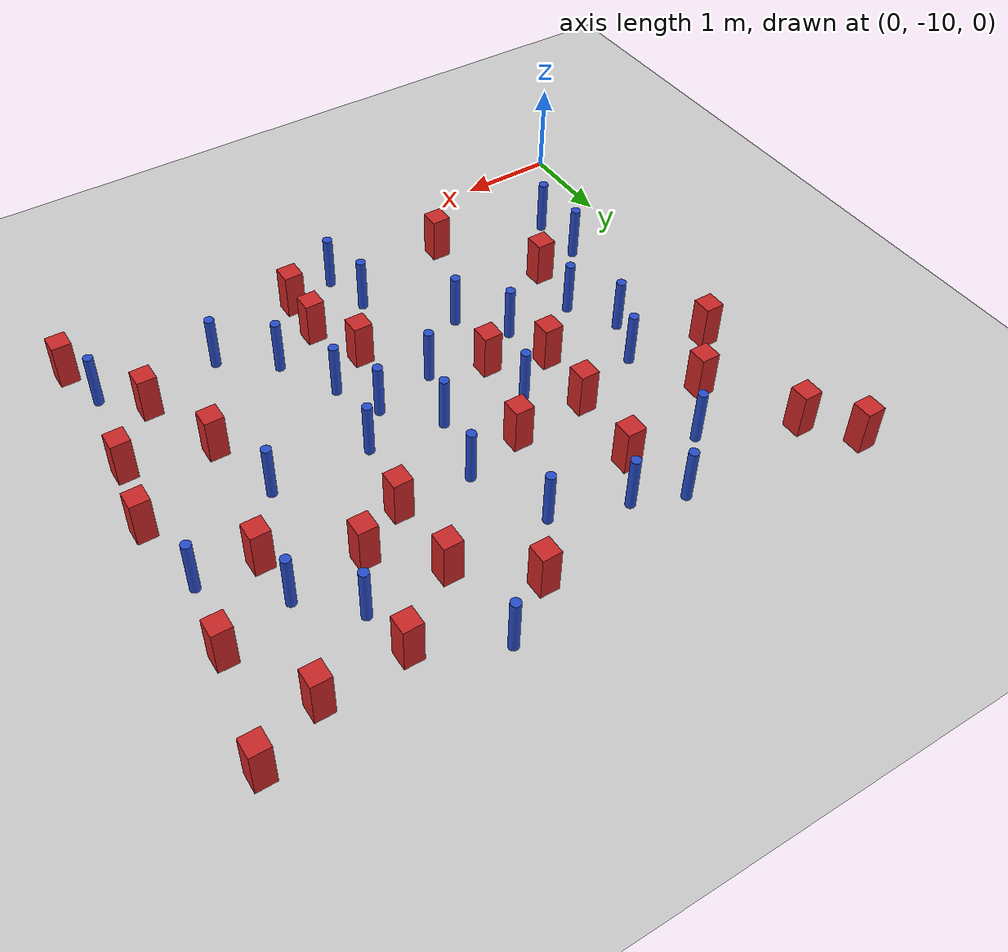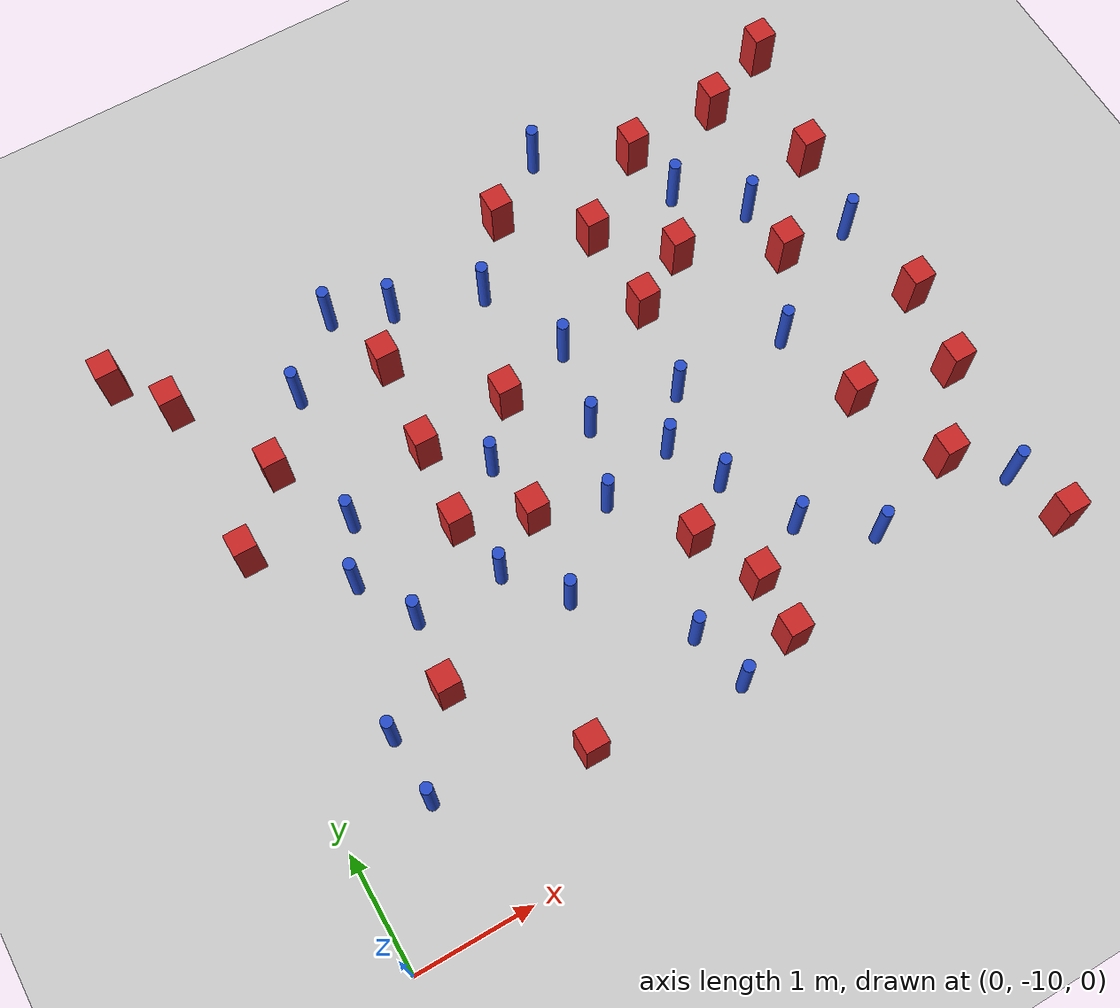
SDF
<sdf version="1.6">
 <world name="default">
  <model name="ground_plane">
   <static>1</static>
   <link name="link">
    <collision name="collision">
     <geometry><plane><normal>0 0 1</normal><size>100 100</size></plane></geometry>
     <surface><friction><ode><mu>100</mu><mu2>50</mu2></ode></friction></surface>
    </collision>
    <visual name="visual">
     <cast_shadows>0</cast_shadows>
     <geometry><plane><normal>0 0 1</normal><size>100 100</size></plane></geometry>
     <material>
      <ambient>1.0 1.0 1.0 1.0</ambient>
      <diffuse>0.8 0.8 0.8 1.0</diffuse>
      <specular>0.01 0.01 0.01 1.000000</specular>
     </material>
    </visual>
   </link>
  </model>
  <model name="pole_obstacle0">
   <static>true</static>
   <pose>2.38550247852 -6.84949095472 -9.47619616065e-06 5.49618799738e-07 2.3631041406e-07 -1.55090534801e-07</pose>
   <link name="link">
    <pose>0 0 0.3 0 -0 0</pose>
    <inertial>
     <mass>1</mass>
     <inertia><ixx>0.145833</ixx><ixy>0</ixy><ixz>0</ixz><iyy>0.145833</iyy><iyz>0</iyz><izz>0.125</izz></inertia>
    </inertial>
    <collision name="collision">
     <geometry><cylinder><radius>0.05</radius><length>.6</length></cylinder></geometry>
    </collision>
    <visual name="visual">
     <geometry><cylinder><radius>0.05</radius><length>.6</length></cylinder></geometry>
     <material>
      <script><name>Gazebo/Blue</name><uri>file://media/materials/scripts/gazebo.material</uri></script>
     </material>
    </visual>
   </link>
  </model>
  <model name="square_post_obstacle3">
   <static>true</static>
   <pose>0.353442843421 -6.57402846743 -6.11067671241e-07 -5.50515727128e-06 -8.79689657224e-07 2.37013304536e-05</pose>
   <link name="link">
    <pose>0 0 0.25 0 -0 0</pose>
    <inertial>
     <mass>100</mass>
     <inertia>
      <ixx>0.166667</ixx>
      <ixy>0</ixy>
      <ixz>0</ixz>
      <iyy>0.166667</iyy>
      <iyz>0</iyz>
      <izz>0.166667</izz>
     </inertia>
    </inertial>
    <collision name="collision"><geometry><box><size>.2 .2 .5</size></box></geometry></collision>
    <visual name="visual">
     <geometry><box><size>.2 .2 .5</size></box></geometry>
     <material>
      <script><name>Gazebo/Red</name><uri>file://media/materials/scripts/gazebo.material</uri></script>
     </material>
    </visual>
   </link>
  </model>
  <model name="square_post_obstacle6">
   <static>true</static>
   <pose>1.92498587914 -9.22740684183 -6.11067671241e-07 -5.50515727128e-06 -8.79689657224e-07 2.37013304536e-05</pose>
   <link name="link">
    <pose>0 0 0.25 0 -0 0</pose>
    <inertial>
     <mass>100</mass>
     <inertia>
      <ixx>0.166667</ixx>
      <ixy>0</ixy>
      <ixz>0</ixz>
      <iyy>0.166667</iyy>
      <iyz>0</iyz>
      <izz>0.166667</izz>
     </inertia>
    </inertial>
    <collision name="collision"><geometry><box><size>.2 .2 .5</size></box></geometry></collision>
    <visual name="visual">
     <geometry><box><size>.2 .2 .5</size></box></geometry>
     <material>
      <script><name>Gazebo/Red</name><uri>file://media/materials/scripts/gazebo.material</uri></script>
     </material>
    </visual>
   </link>
  </model>
  <model name="square_post_obstacle7">
   <static>true</static>
   <pose>3.69805389555 -9.23047519515 -6.11067671241e-07 -5.50515727128e-06 -8.79689657224e-07 2.37013304536e-05</pose>
   <link name="link">
    <pose>0 0 0.25 0 -0 0</pose>
    <inertial>
     <mass>100</mass>
     <inertia>
      <ixx>0.166667</ixx>
      <ixy>0</ixy>
      <ixz>0</ixz>
      <iyy>0.166667</iyy>
      <iyz>0</iyz>
      <izz>0.166667</izz>
     </inertia>
    </inertial>
    <collision name="collision"><geometry><box><size>.2 .2 .5</size></box></geometry></collision>
    <visual name="visual">
     <geometry><box><size>.2 .2 .5</size></box></geometry>
     <material>
      <script><name>Gazebo/Red</name><uri>file://media/materials/scripts/gazebo.material</uri></script>
     </material>
    </visual>
   </link>
  </model>
  <model name="square_post_obstacle9">
   <static>true</static>
   <pose>5.47112627486 -6.36374514574 -6.11067671241e-07 -5.50515727128e-06 -8.79689657224e-07 2.37013304536e-05</pose>
   <link name="link">
    <pose>0 0 0.25 0 -0 0</pose>
    <inertial>
     <mass>100</mass>
     <inertia>
      <ixx>0.166667</ixx>
      <ixy>0</ixy>
      <ixz>0</ixz>
      <iyy>0.166667</iyy>
      <iyz>0</iyz>
      <izz>0.166667</izz>
     </inertia>
    </inertial>
    <collision name="collision"><geometry><box><size>.2 .2 .5</size></box></geometry></collision>
    <visual name="visual">
     <geometry><box><size>.2 .2 .5</size></box></geometry>
     <material>
      <script><name>Gazebo/Red</name><uri>file://media/materials/scripts/gazebo.material</uri></script>
     </material>
    </visual>
   </link>
  </model>
  <model name="square_post_obstacle14">
   <static>true</static>
   <pose>3.52335067669 -4.87826846068 -6.11067671241e-07 -5.50515727128e-06 -8.79689657224e-07 2.37013304536e-05</pose>
   <link name="link">
    <pose>0 0 0.25 0 -0 0</pose>
    <inertial>
     <mass>100</mass>
     <inertia>
      <ixx>0.166667</ixx>
      <ixy>0</ixy>
      <ixz>0</ixz>
      <iyy>0.166667</iyy>
      <iyz>0</iyz>
      <izz>0.166667</izz>
     </inertia>
    </inertial>
    <collision name="collision"><geometry><box><size>.2 .2 .5</size></box></geometry></collision>
    <visual name="visual">
     <geometry><box><size>.2 .2 .5</size></box></geometry>
     <material>
      <script><name>Gazebo/Red</name><uri>file://media/materials/scripts/gazebo.material</uri></script>
     </material>
    </visual>
   </link>
  </model>
  <model name="pole_obstacle24">
   <static>true</static>
   <pose>4.22378976199 -8.48527115542 -9.47619616065e-06 5.49618799737e-07 2.36310414065e-07 -1.55090534796e-07</pose>
   <link name="link">
    <pose>0 0 0.3 0 -0 0</pose>
    <inertial>
     <mass>1</mass>
     <inertia><ixx>0.145833</ixx><ixy>0</ixy><ixz>0</ixz><iyy>0.145833</iyy><iyz>0</iyz><izz>0.125</izz></inertia>
    </inertial>
    <collision name="collision">
     <geometry><cylinder><radius>0.05</radius><length>.6</length></cylinder></geometry>
    </collision>
    <visual name="visual">
     <geometry><cylinder><radius>0.05</radius><length>.6</length></cylinder></geometry>
     <material>
      <script><name>Gazebo/Blue</name><uri>file://media/materials/scripts/gazebo.material</uri></script>
     </material>
    </visual>
   </link>
  </model>
  <model name="pole_obstacle25">
   <static>true</static>
   <pose>2.00403096089 -7.68478396315 -9.47619616065e-06 5.49618799737e-07 2.36310414059e-07 -1.55090534802e-07</pose>
   <link name="link">
    <pose>0 0 0.3 0 -0 0</pose>
    <inertial>
     <mass>1</mass>
     <inertia><ixx>0.145833</ixx><ixy>0</ixy><ixz>0</ixz><iyy>0.145833</iyy><iyz>0</iyz><izz>0.125</izz></inertia>
    </inertial>
    <collision name="collision">
     <geometry><cylinder><radius>0.05</radius><length>.6</length></cylinder></geometry>
    </collision>
    <visual name="visual">
     <geometry><cylinder><radius>0.05</radius><length>.6</length></cylinder></geometry>
     <material>
      <script><name>Gazebo/Blue</name><uri>file://media/materials/scripts/gazebo.material</uri></script>
     </material>
    </visual>
   </link>
  </model>
  <model name="pole_obstacle38">
   <static>true</static>
   <pose>5.4336453875 -5.85831676331 -9.47619616065e-06 5.49618799737e-07 2.36310414037e-07 -1.55090534814e-07</pose>
   <link name="link">
    <pose>0 0 0.3 0 -0 0</pose>
    <inertial>
     <mass>1</mass>
     <inertia><ixx>0.145833</ixx><ixy>0</ixy><ixz>0</ixz><iyy>0.145833</iyy><iyz>0</iyz><izz>0.125</izz></inertia>
    </inertial>
    <collision name="collision">
     <geometry><cylinder><radius>0.05</radius><length>.6</length></cylinder></geometry>
    </collision>
    <visual name="visual">
     <geometry><cylinder><radius>0.05</radius><length>.6</length></cylinder></geometry>
     <material>
      <script><name>Gazebo/Blue</name><uri>file://media/materials/scripts/gazebo.material</uri></script>
     </material>
    </visual>
   </link>
  </model>
  <model name="square_post_obstacle36">
   <static>true</static>
   <pose>4.16320493774 -6.22463550434 -6.11067671241e-07 -5.50515727128e-06 -8.79689657224e-07 2.37013304536e-05</pose>
   <link name="link">
    <pose>0 0 0.25 0 -0 0</pose>
    <inertial>
     <mass>100</mass>
     <inertia>
      <ixx>0.166667</ixx>
      <ixy>0</ixy>
      <ixz>0</ixz>
      <iyy>0.166667</iyy>
      <iyz>0</iyz>
      <izz>0.166667</izz>
     </inertia>
    </inertial>
    <collision name="collision"><geometry><box><size>.2 .2 .5</size></box></geometry></collision>
    <visual name="visual">
     <geometry><box><size>.2 .2 .5</size></box></geometry>
     <material>
      <script><name>Gazebo/Red</name><uri>file://media/materials/scripts/gazebo.material</uri></script>
     </material>
    </visual>
   </link>
  </model>
  <model name="pole_obstacle50">
   <static>true</static>
   <pose>0.700080828676 -8.98277773861 -9.47619616065e-06 5.49618799737e-07 2.36310414038e-07 -1.55090534813e-07</pose>
   <link name="link">
    <pose>0 0 0.3 0 -0 0</pose>
    <inertial>
     <mass>1</mass>
     <inertia><ixx>0.145833</ixx><ixy>0</ixy><ixz>0</ixz><iyy>0.145833</iyy><iyz>0</iyz><izz>0.125</izz></inertia>
    </inertial>
    <collision name="collision">
     <geometry><cylinder><radius>0.05</radius><length>.6</length></cylinder></geometry>
    </collision>
    <visual name="visual">
     <geometry><cylinder><radius>0.05</radius><length>.6</length></cylinder></geometry>
     <material>
      <script><name>Gazebo/Blue</name><uri>file://media/materials/scripts/gazebo.material</uri></script>
     </material>
    </visual>
   </link>
  </model>
  <model name="pole_obstacle58">
   <static>true</static>
   <pose>1.84922738913 -5.00906584061 -9.47619616065e-06 5.49618799737e-07 2.36310414061e-07 -1.550905348e-07</pose>
   <link name="link">
    <pose>0 0 0.3 0 -0 0</pose>
    <inertial>
     <mass>1</mass>
     <inertia><ixx>0.145833</ixx><ixy>0</ixy><ixz>0</ixz><iyy>0.145833</iyy><iyz>0</iyz><izz>0.125</izz></inertia>
    </inertial>
    <collision name="collision">
     <geometry><cylinder><radius>0.05</radius><length>.6</length></cylinder></geometry>
    </collision>
    <visual name="visual">
     <geometry><cylinder><radius>0.05</radius><length>.6</length></cylinder></geometry>
     <material>
      <script><name>Gazebo/Blue</name><uri>file://media/materials/scripts/gazebo.material</uri></script>
     </material>
    </visual>
   </link>
  </model>
  <model name="pole_obstacle62">
   <static>true</static>
   <pose>4.0819444717 -4.50236184761 -9.47619616065e-06 5.49618799737e-07 2.36310414037e-07 -1.55090534814e-07</pose>
   <link name="link">
    <pose>0 0 0.3 0 -0 0</pose>
    <inertial>
     <mass>1</mass>
     <inertia><ixx>0.145833</ixx><ixy>0</ixy><ixz>0</ixz><iyy>0.145833</iyy><iyz>0</iyz><izz>0.125</izz></inertia>
    </inertial>
    <collision name="collision">
     <geometry><cylinder><radius>0.05</radius><length>.6</length></cylinder></geometry>
    </collision>
    <visual name="visual">
     <geometry><cylinder><radius>0.05</radius><length>.6</length></cylinder></geometry>
     <material>
      <script><name>Gazebo/Blue</name><uri>file://media/materials/scripts/gazebo.material</uri></script>
     </material>
    </visual>
   </link>
  </model>
  <model name="square_post_obstacle49">
   <static>true</static>
   <pose>6.07861316647 -7.96696629217 -6.11067671241e-07 -5.50515727128e-06 -8.79689657224e-07 2.37013304536e-05</pose>
   <link name="link">
    <pose>0 0 0.25 0 -0 0</pose>
    <inertial>
     <mass>100</mass>
     <inertia>
      <ixx>0.166667</ixx>
      <ixy>0</ixy>
      <ixz>0</ixz>
      <iyy>0.166667</iyy>
      <iyz>0</iyz>
      <izz>0.166667</izz>
     </inertia>
    </inertial>
    <collision name="collision"><geometry><box><size>.2 .2 .5</size></box></geometry></collision>
    <visual name="visual">
     <geometry><box><size>.2 .2 .5</size></box></geometry>
     <material>
      <script><name>Gazebo/Red</name><uri>file://media/materials/scripts/gazebo.material</uri></script>
     </material>
    </visual>
   </link>
  </model>
  <model name="square_post_obstacle51">
   <static>true</static>
   <pose>1.98005928919 -6.45070567607 -6.11067671241e-07 -5.50515727128e-06 -8.79689657224e-07 2.37013304536e-05</pose>
   <link name="link">
    <pose>0 0 0.25 0 -0 0</pose>
    <inertial>
     <mass>100</mass>
     <inertia>
      <ixx>0.166667</ixx>
      <ixy>0</ixy>
      <ixz>0</ixz>
      <iyy>0.166667</iyy>
      <iyz>0</iyz>
      <izz>0.166667</izz>
     </inertia>
    </inertial>
    <collision name="collision"><geometry><box><size>.2 .2 .5</size></box></geometry></collision>
    <visual name="visual">
     <geometry><box><size>.2 .2 .5</size></box></geometry>
     <material>
      <script><name>Gazebo/Red</name><uri>file://media/materials/scripts/gazebo.material</uri></script>
     </material>
    </visual>
   </link>
  </model>
  <model name="square_post_obstacle54">
   <static>true</static>
   <pose>6.0830693443 -9.4782845456 -6.11067671241e-07 -5.50515727128e-06 -8.79689657224e-07 2.37013304536e-05</pose>
   <link name="link">
    <pose>0 0 0.25 0 -0 0</pose>
    <inertial>
     <mass>100</mass>
     <inertia>
      <ixx>0.166667</ixx>
      <ixy>0</ixy>
      <ixz>0</ixz>
      <iyy>0.166667</iyy>
      <iyz>0</iyz>
      <izz>0.166667</izz>
     </inertia>
    </inertial>
    <collision name="collision"><geometry><box><size>.2 .2 .5</size></box></geometry></collision>
    <visual name="visual">
     <geometry><box><size>.2 .2 .5</size></box></geometry>
     <material>
      <script><name>Gazebo/Red</name><uri>file://media/materials/scripts/gazebo.material</uri></script>
     </material>
    </visual>
   </link>
  </model>
  <model name="square_post_obstacle66">
   <static>true</static>
   <pose>5.24496083556 -7.78585872369 -6.11067671241e-07 -5.50515727128e-06 -8.79689657224e-07 2.37013304536e-05</pose>
   <link name="link">
    <pose>0 0 0.25 0 -0 0</pose>
    <inertial>
     <mass>100</mass>
     <inertia>
      <ixx>0.166667</ixx>
      <ixy>0</ixy>
      <ixz>0</ixz>
      <iyy>0.166667</iyy>
      <iyz>0</iyz>
      <izz>0.166667</izz>
     </inertia>
    </inertial>
    <collision name="collision"><geometry><box><size>.2 .2 .5</size></box></geometry></collision>
    <visual name="visual">
     <geometry><box><size>.2 .2 .5</size></box></geometry>
     <material>
      <script><name>Gazebo/Red</name><uri>file://media/materials/scripts/gazebo.material</uri></script>
     </material>
    </visual>
   </link>
  </model>
  <model name="square_post_obstacle71">
   <static>true</static>
   <pose>4.15275217884 -5.41244480532 -6.11067671241e-07 -5.50515727128e-06 -8.79689657224e-07 2.37013304536e-05</pose>
   <link name="link">
    <pose>0 0 0.25 0 -0 0</pose>
    <inertial>
     <mass>100</mass>
     <inertia>
      <ixx>0.166667</ixx>
      <ixy>0</ixy>
      <ixz>0</ixz>
      <iyy>0.166667</iyy>
      <iyz>0</iyz>
      <izz>0.166667</izz>
     </inertia>
    </inertial>
    <collision name="collision"><geometry><box><size>.2 .2 .5</size></box></geometry></collision>
    <visual name="visual">
     <geometry><box><size>.2 .2 .5</size></box></geometry>
     <material>
      <script><name>Gazebo/Red</name><uri>file://media/materials/scripts/gazebo.material</uri></script>
     </material>
    </visual>
   </link>
  </model>
  <model name="pole_obstacle91">
   <static>true</static>
   <pose>3.39165481014 -6.23846150892 -9.47619616065e-06 5.49618799738e-07 2.3631041406e-07 -1.55090534801e-07</pose>
   <link name="link">
    <pose>0 0 0.3 0 -0 0</pose>
    <inertial>
     <mass>1</mass>
     <inertia><ixx>0.145833</ixx><ixy>0</ixy><ixz>0</ixz><iyy>0.145833</iyy><iyz>0</iyz><izz>0.125</izz></inertia>
    </inertial>
    <collision name="collision">
     <geometry><cylinder><radius>0.05</radius><length>.6</length></cylinder></geometry>
    </collision>
    <visual name="visual">
     <geometry><cylinder><radius>0.05</radius><length>.6</length></cylinder></geometry>
     <material>
      <script><name>Gazebo/Blue</name><uri>file://media/materials/scripts/gazebo.material</uri></script>
     </material>
    </visual>
   </link>
  </model>
  <model name="square_post_obstacle89">
   <static>true</static>
   <pose>0.862809572649 -6.02840480693 -6.11067671241e-07 -5.50515727128e-06 -8.79689657224e-07 2.37013304536e-05</pose>
   <link name="link">
    <pose>0 0 0.25 0 -0 0</pose>
    <inertial>
     <mass>100</mass>
     <inertia>
      <ixx>0.166667</ixx>
      <ixy>0</ixy>
      <ixz>0</ixz>
      <iyy>0.166667</iyy>
      <iyz>0</iyz>
      <izz>0.166667</izz>
     </inertia>
    </inertial>
    <collision name="collision"><geometry><box><size>.2 .2 .5</size></box></geometry></collision>
    <visual name="visual">
     <geometry><box><size>.2 .2 .5</size></box></geometry>
     <material>
      <script><name>Gazebo/Red</name><uri>file://media/materials/scripts/gazebo.material</uri></script>
     </material>
    </visual>
   </link>
  </model>
  <model name="square_post_obstacle101">
   <static>true</static>
   <pose>2.46283356458 -7.38534161486 -6.11067671241e-07 -5.50515727128e-06 -8.79689657224e-07 2.37013304536e-05</pose>
   <link name="link">
    <pose>0 0 0.25 0 -0 0</pose>
    <inertial>
     <mass>100</mass>
     <inertia>
      <ixx>0.166667</ixx>
      <ixy>0</ixy>
      <ixz>0</ixz>
      <iyy>0.166667</iyy>
      <iyz>0</iyz>
      <izz>0.166667</izz>
     </inertia>
    </inertial>
    <collision name="collision"><geometry><box><size>.2 .2 .5</size></box></geometry></collision>
    <visual name="visual">
     <geometry><box><size>.2 .2 .5</size></box></geometry>
     <material>
      <script><name>Gazebo/Red</name><uri>file://media/materials/scripts/gazebo.material</uri></script>
     </material>
    </visual>
   </link>
  </model>
  <model name="square_post_obstacle114">
   <static>true</static>
   <pose>6.19981773251 -7.2221204012 -6.11067671241e-07 -5.50515727128e-06 -8.79689657224e-07 2.37013304536e-05</pose>
   <link name="link">
    <pose>0 0 0.25 0 -0 0</pose>
    <inertial>
     <mass>100</mass>
     <inertia>
      <ixx>0.166667</ixx>
      <ixy>0</ixy>
      <ixz>0</ixz>
      <iyy>0.166667</iyy>
      <iyz>0</iyz>
      <izz>0.166667</izz>
     </inertia>
    </inertial>
    <collision name="collision"><geometry><box><size>.2 .2 .5</size></box></geometry></collision>
    <visual name="visual">
     <geometry><box><size>.2 .2 .5</size></box></geometry>
     <material>
      <script><name>Gazebo/Red</name><uri>file://media/materials/scripts/gazebo.material</uri></script>
     </material>
    </visual>
   </link>
  </model>
  <model name="pole_obstacle117">
   <static>true</static>
   <pose>2.33862973775 -5.20518136569 -9.47619616065e-06 5.49618799738e-07 2.3631041406e-07 -1.55090534801e-07</pose>
   <link name="link">
    <pose>0 0 0.3 0 -0 0</pose>
    <inertial>
     <mass>1</mass>
     <inertia><ixx>0.145833</ixx><ixy>0</ixy><ixz>0</ixz><iyy>0.145833</iyy><iyz>0</iyz><izz>0.125</izz></inertia>
    </inertial>
    <collision name="collision">
     <geometry><cylinder><radius>0.05</radius><length>.6</length></cylinder></geometry>
    </collision>
    <visual name="visual">
     <geometry><cylinder><radius>0.05</radius><length>.6</length></cylinder></geometry>
     <material>
      <script><name>Gazebo/Blue</name><uri>file://media/materials/scripts/gazebo.material</uri></script>
     </material>
    </visual>
   </link>
  </model>
  <model name="pole_obstacle122">
   <static>true</static>
   <pose>3.17646518653 -9.37428881882 -9.4761961606e-06 5.49618799729e-07 2.36310414e-07 -1.55090534824e-07</pose>
   <link name="link">
    <pose>0 0 0.3 0 -0 0</pose>
    <inertial>
     <mass>1</mass>
     <inertia><ixx>0.145833</ixx><ixy>0</ixy><ixz>0</ixz><iyy>0.145833</iyy><iyz>0</iyz><izz>0.125</izz></inertia>
    </inertial>
    <collision name="collision">
     <geometry><cylinder><radius>0.05</radius><length>.6</length></cylinder></geometry>
    </collision>
    <visual name="visual">
     <geometry><cylinder><radius>0.05</radius><length>.6</length></cylinder></geometry>
     <material>
      <script><name>Gazebo/Blue</name><uri>file://media/materials/scripts/gazebo.material</uri></script>
     </material>
    </visual>
   </link>
  </model>
  <model name="pole_obstacle123">
   <static>true</static>
   <pose>1.26293244196 -7.69176431854 -9.47619616065e-06 5.49618799737e-07 2.36310414061e-07 -1.550905348e-07</pose>
   <link name="link">
    <pose>0 0 0.3 0 -0 0</pose>
    <inertial>
     <mass>1</mass>
     <inertia><ixx>0.145833</ixx><ixy>0</ixy><ixz>0</ixz><iyy>0.145833</iyy><iyz>0</iyz><izz>0.125</izz></inertia>
    </inertial>
    <collision name="collision">
     <geometry><cylinder><radius>0.05</radius><length>.6</length></cylinder></geometry>
    </collision>
    <visual name="visual">
     <geometry><cylinder><radius>0.05</radius><length>.6</length></cylinder></geometry>
     <material>
      <script><name>Gazebo/Blue</name><uri>file://media/materials/scripts/gazebo.material</uri></script>
     </material>
    </visual>
   </link>
  </model>
  <model name="pole_obstacle131">
   <static>true</static>
   <pose>1.19306065336 -6.72215007823 -9.47619616065e-06 5.49618799737e-07 2.36310414061e-07 -1.550905348e-07</pose>
   <link name="link">
    <pose>0 0 0.3 0 -0 0</pose>
    <inertial>
     <mass>1</mass>
     <inertia><ixx>0.145833</ixx><ixy>0</ixy><ixz>0</ixz><iyy>0.145833</iyy><iyz>0</iyz><izz>0.125</izz></inertia>
    </inertial>
    <collision name="collision">
     <geometry><cylinder><radius>0.05</radius><length>.6</length></cylinder></geometry>
    </collision>
    <visual name="visual">
     <geometry><cylinder><radius>0.05</radius><length>.6</length></cylinder></geometry>
     <material>
      <script><name>Gazebo/Blue</name><uri>file://media/materials/scripts/gazebo.material</uri></script>
     </material>
    </visual>
   </link>
  </model>
  <model name="square_post_obstacle137">
   <static>true</static>
   <pose>6.15530552445 -5.64673132048 -6.11067671241e-07 -5.50515727128e-06 -8.79689657224e-07 2.37013304536e-05</pose>
   <link name="link">
    <pose>0 0 0.25 0 -0 0</pose>
    <inertial>
     <mass>100</mass>
     <inertia>
      <ixx>0.166667</ixx>
      <ixy>0</ixy>
      <ixz>0</ixz>
      <iyy>0.166667</iyy>
      <iyz>0</iyz>
      <izz>0.166667</izz>
     </inertia>
    </inertial>
    <collision name="collision"><geometry><box><size>.2 .2 .5</size></box></geometry></collision>
    <visual name="visual">
     <geometry><box><size>.2 .2 .5</size></box></geometry>
     <material>
      <script><name>Gazebo/Red</name><uri>file://media/materials/scripts/gazebo.material</uri></script>
     </material>
    </visual>
   </link>
  </model>
  <model name="square_post_obstacle139">
   <static>true</static>
   <pose>2.76616913959 -6.39112124869 -6.11067671241e-07 -5.50515727128e-06 -8.79689657224e-07 2.37013304536e-05</pose>
   <link name="link">
    <pose>0 0 0.25 0 -0 0</pose>
    <inertial>
     <mass>100</mass>
     <inertia>
      <ixx>0.166667</ixx>
      <ixy>0</ixy>
      <ixz>0</ixz>
      <iyy>0.166667</iyy>
      <iyz>0</iyz>
      <izz>0.166667</izz>
     </inertia>
    </inertial>
    <collision name="collision"><geometry><box><size>.2 .2 .5</size></box></geometry></collision>
    <visual name="visual">
     <geometry><box><size>.2 .2 .5</size></box></geometry>
     <material>
      <script><name>Gazebo/Red</name><uri>file://media/materials/scripts/gazebo.material</uri></script>
     </material>
    </visual>
   </link>
  </model>
  <model name="pole_obstacle146">
   <static>true</static>
   <pose>3.90398476992 -7.8853315243 -9.47619616065e-06 5.49618799738e-07 2.3631041406e-07 -1.55090534801e-07</pose>
   <link name="link">
    <pose>0 0 0.3 0 -0 0</pose>
    <inertial>
     <mass>1</mass>
     <inertia><ixx>0.145833</ixx><ixy>0</ixy><ixz>0</ixz><iyy>0.145833</iyy><iyz>0</iyz><izz>0.125</izz></inertia>
    </inertial>
    <collision name="collision">
     <geometry><cylinder><radius>0.05</radius><length>.6</length></cylinder></geometry>
    </collision>
    <visual name="visual">
     <geometry><cylinder><radius>0.05</radius><length>.6</length></cylinder></geometry>
     <material>
      <script><name>Gazebo/Blue</name><uri>file://media/materials/scripts/gazebo.material</uri></script>
     </material>
    </visual>
   </link>
  </model>
  <model name="pole_obstacle154">
   <static>true</static>
   <pose>5.03102320632 -7.03770606187 -9.47619616065e-06 5.49618799737e-07 2.36310414037e-07 -1.55090534814e-07</pose>
   <link name="link">
    <pose>0 0 0.3 0 -0 0</pose>
    <inertial>
     <mass>1</mass>
     <inertia><ixx>0.145833</ixx><ixy>0</ixy><ixz>0</ixz><iyy>0.145833</iyy><iyz>0</iyz><izz>0.125</izz></inertia>
    </inertial>
    <collision name="collision">
     <geometry><cylinder><radius>0.05</radius><length>.6</length></cylinder></geometry>
    </collision>
    <visual name="visual">
     <geometry><cylinder><radius>0.05</radius><length>.6</length></cylinder></geometry>
     <material>
      <script><name>Gazebo/Blue</name><uri>file://media/materials/scripts/gazebo.material</uri></script>
     </material>
    </visual>
   </link>
  </model>
  <model name="pole_obstacle159">
   <static>true</static>
   <pose>3.05876264458 -8.87025854242 -9.4761961606e-06 5.49618799729e-07 2.36310414e-07 -1.55090534824e-07</pose>
   <link name="link">
    <pose>0 0 0.3 0 -0 0</pose>
    <inertial>
     <mass>1</mass>
     <inertia><ixx>0.145833</ixx><ixy>0</ixy><ixz>0</ixz><iyy>0.145833</iyy><iyz>0</iyz><izz>0.125</izz></inertia>
    </inertial>
    <collision name="collision">
     <geometry><cylinder><radius>0.05</radius><length>.6</length></cylinder></geometry>
    </collision>
    <visual name="visual">
     <geometry><cylinder><radius>0.05</radius><length>.6</length></cylinder></geometry>
     <material>
      <script><name>Gazebo/Blue</name><uri>file://media/materials/scripts/gazebo.material</uri></script>
     </material>
    </visual>
   </link>
  </model>
  <model name="square_post_obstacle155">
   <static>true</static>
   <pose>1.89724109176 -7.16122820575 -6.11067671241e-07 -5.50515727128e-06 -8.79689657224e-07 2.37013304536e-05</pose>
   <link name="link">
    <pose>0 0 0.25 0 -0 0</pose>
    <inertial>
     <mass>100</mass>
     <inertia>
      <ixx>0.166667</ixx>
      <ixy>0</ixy>
      <ixz>0</ixz>
      <iyy>0.166667</iyy>
      <iyz>0</iyz>
      <izz>0.166667</izz>
     </inertia>
    </inertial>
    <collision name="collision"><geometry><box><size>.2 .2 .5</size></box></geometry></collision>
    <visual name="visual">
     <geometry><box><size>.2 .2 .5</size></box></geometry>
     <material>
      <script><name>Gazebo/Red</name><uri>file://media/materials/scripts/gazebo.material</uri></script>
     </material>
    </visual>
   </link>
  </model>
  <model name="square_post_obstacle160">
   <static>true</static>
   <pose>2.0593853051 -5.62880608395 -6.11067671241e-07 -5.50515727128e-06 -8.79689657224e-07 2.37013304536e-05</pose>
   <link name="link">
    <pose>0 0 0.25 0 -0 0</pose>
    <inertial>
     <mass>100</mass>
     <inertia>
      <ixx>0.166667</ixx>
      <ixy>0</ixy>
      <ixz>0</ixz>
      <iyy>0.166667</iyy>
      <iyz>0</iyz>
      <izz>0.166667</izz>
     </inertia>
    </inertial>
    <collision name="collision"><geometry><box><size>.2 .2 .5</size></box></geometry></collision>
    <visual name="visual">
     <geometry><box><size>.2 .2 .5</size></box></geometry>
     <material>
      <script><name>Gazebo/Red</name><uri>file://media/materials/scripts/gazebo.material</uri></script>
     </material>
    </visual>
   </link>
  </model>
  <model name="pole_obstacle168">
   <static>true</static>
   <pose>3.0772840552 -5.45057202198 -9.47619616065e-06 5.49618799738e-07 2.3631041406e-07 -1.55090534801e-07</pose>
   <link name="link">
    <pose>0 0 0.3 0 -0 0</pose>
    <inertial>
     <mass>1</mass>
     <inertia><ixx>0.145833</ixx><ixy>0</ixy><ixz>0</ixz><iyy>0.145833</iyy><iyz>0</iyz><izz>0.125</izz></inertia>
    </inertial>
    <collision name="collision">
     <geometry><cylinder><radius>0.05</radius><length>.6</length></cylinder></geometry>
    </collision>
    <visual name="visual">
     <geometry><cylinder><radius>0.05</radius><length>.6</length></cylinder></geometry>
     <material>
      <script><name>Gazebo/Blue</name><uri>file://media/materials/scripts/gazebo.material</uri></script>
     </material>
    </visual>
   </link>
  </model>
  <model name="square_post_obstacle167">
   <static>true</static>
   <pose>4.86023928034 -4.87826385119 -6.11067671241e-07 -5.50515727128e-06 -8.79689657224e-07 2.37013304536e-05</pose>
   <link name="link">
    <pose>0 0 0.25 0 -0 0</pose>
    <inertial>
     <mass>100</mass>
     <inertia>
      <ixx>0.166667</ixx>
      <ixy>0</ixy>
      <ixz>0</ixz>
      <iyy>0.166667</iyy>
      <iyz>0</iyz>
      <izz>0.166667</izz>
     </inertia>
    </inertial>
    <collision name="collision"><geometry><box><size>.2 .2 .5</size></box></geometry></collision>
    <visual name="visual">
     <geometry><box><size>.2 .2 .5</size></box></geometry>
     <material>
      <script><name>Gazebo/Red</name><uri>file://media/materials/scripts/gazebo.material</uri></script>
     </material>
    </visual>
   </link>
  </model>
  <model name="pole_obstacle169">
   <static>true</static>
   <pose>4.74717293839 -8.87487606068 -9.47619616065e-06 5.49618799737e-07 2.36310414065e-07 -1.55090534796e-07</pose>
   <link name="link">
    <pose>0 0 0.3 0 -0 0</pose>
    <inertial>
     <mass>1</mass>
     <inertia><ixx>0.145833</ixx><ixy>0</ixy><ixz>0</ixz><iyy>0.145833</iyy><iyz>0</iyz><izz>0.125</izz></inertia>
    </inertial>
    <collision name="collision">
     <geometry><cylinder><radius>0.05</radius><length>.6</length></cylinder></geometry>
    </collision>
    <visual name="visual">
     <geometry><cylinder><radius>0.05</radius><length>.6</length></cylinder></geometry>
     <material>
      <script><name>Gazebo/Blue</name><uri>file://media/materials/scripts/gazebo.material</uri></script>
     </material>
    </visual>
   </link>
  </model>
  <model name="square_post_obstacle169">
   <static>true</static>
   <pose>4.67873578925 -5.9286851429 -6.11067671241e-07 -5.50515727128e-06 -8.79689657224e-07 2.37013304536e-05</pose>
   <link name="link">
    <pose>0 0 0.25 0 -0 0</pose>
    <inertial>
     <mass>100</mass>
     <inertia>
      <ixx>0.166667</ixx>
      <ixy>0</ixy>
      <ixz>0</ixz>
      <iyy>0.166667</iyy>
      <iyz>0</iyz>
      <izz>0.166667</izz>
     </inertia>
    </inertial>
    <collision name="collision"><geometry><box><size>.2 .2 .5</size></box></geometry></collision>
    <visual name="visual">
     <geometry><box><size>.2 .2 .5</size></box></geometry>
     <material>
      <script><name>Gazebo/Red</name><uri>file://media/materials/scripts/gazebo.material</uri></script>
     </material>
    </visual>
   </link>
  </model>
  <model name="square_post_obstacle170">
   <static>true</static>
   <pose>5.70616260913 -4.82730026635 -6.11067671241e-07 -5.50515727128e-06 -8.79689657224e-07 2.37013304536e-05</pose>
   <link name="link">
    <pose>0 0 0.25 0 -0 0</pose>
    <inertial>
     <mass>100</mass>
     <inertia>
      <ixx>0.166667</ixx>
      <ixy>0</ixy>
      <ixz>0</ixz>
      <iyy>0.166667</iyy>
      <iyz>0</iyz>
      <izz>0.166667</izz>
     </inertia>
    </inertial>
    <collision name="collision"><geometry><box><size>.2 .2 .5</size></box></geometry></collision>
    <visual name="visual">
     <geometry><box><size>.2 .2 .5</size></box></geometry>
     <material>
      <script><name>Gazebo/Red</name><uri>file://media/materials/scripts/gazebo.material</uri></script>
     </material>
    </visual>
   </link>
  </model>
  <model name="square_post_obstacle176">
   <static>true</static>
   <pose>6.36084435761 -4.5380812038 -6.11067671241e-07 -5.50515727128e-06 -8.79689657224e-07 2.37013304536e-05</pose>
   <link name="link">
    <pose>0 0 0.25 0 -0 0</pose>
    <inertial>
     <mass>100</mass>
     <inertia>
      <ixx>0.166667</ixx>
      <ixy>0</ixy>
      <ixz>0</ixz>
      <iyy>0.166667</iyy>
      <iyz>0</iyz>
      <izz>0.166667</izz>
     </inertia>
    </inertial>
    <collision name="collision"><geometry><box><size>.2 .2 .5</size></box></geometry></collision>
    <visual name="visual">
     <geometry><box><size>.2 .2 .5</size></box></geometry>
     <material>
      <script><name>Gazebo/Red</name><uri>file://media/materials/scripts/gazebo.material</uri></script>
     </material>
    </visual>
   </link>
  </model>
  <model name="square_post_obstacle178">
   <static>true</static>
   <pose>3.72003113835 -8.72901229031 -6.11067671241e-07 -5.50515727128e-06 -8.79689657224e-07 2.37013304536e-05</pose>
   <link name="link">
    <pose>0 0 0.25 0 -0 0</pose>
    <inertial>
     <mass>100</mass>
     <inertia>
      <ixx>0.166667</ixx>
      <ixy>0</ixy>
      <ixz>0</ixz>
      <iyy>0.166667</iyy>
      <iyz>0</iyz>
      <izz>0.166667</izz>
     </inertia>
    </inertial>
    <collision name="collision"><geometry><box><size>.2 .2 .5</size></box></geometry></collision>
    <visual name="visual">
     <geometry><box><size>.2 .2 .5</size></box></geometry>
     <material>
      <script><name>Gazebo/Red</name><uri>file://media/materials/scripts/gazebo.material</uri></script>
     </material>
    </visual>
   </link>
  </model>
  <model name="pole_obstacle180">
   <static>true</static>
   <pose>0.986793418914 -7.19784546686 -9.47619616065e-06 5.49618799737e-07 2.36310414071e-07 -1.55090534793e-07</pose>
   <link name="link">
    <pose>0 0 0.3 0 -0 0</pose>
    <inertial>
     <mass>1</mass>
     <inertia><ixx>0.145833</ixx><ixy>0</ixy><ixz>0</ixz><iyy>0.145833</iyy><iyz>0</iyz><izz>0.125</izz></inertia>
    </inertial>
    <collision name="collision">
     <geometry><cylinder><radius>0.05</radius><length>.6</length></cylinder></geometry>
    </collision>
    <visual name="visual">
     <geometry><cylinder><radius>0.05</radius><length>.6</length></cylinder></geometry>
     <material>
      <script><name>Gazebo/Blue</name><uri>file://media/materials/scripts/gazebo.material</uri></script>
     </material>
    </visual>
   </link>
  </model>
  <model name="pole_obstacle186">
   <static>true</static>
   <pose>2.36857842312 -8.13984640075 -9.4761961606e-06 5.49618799729e-07 2.36310414e-07 -1.55090534824e-07</pose>
   <link name="link">
    <pose>0 0 0.3 0 -0 0</pose>
    <inertial>
     <mass>1</mass>
     <inertia><ixx>0.145833</ixx><ixy>0</ixy><ixz>0</ixz><iyy>0.145833</iyy><iyz>0</iyz><izz>0.125</izz></inertia>
    </inertial>
    <collision name="collision">
     <geometry><cylinder><radius>0.05</radius><length>.6</length></cylinder></geometry>
    </collision>
    <visual name="visual">
     <geometry><cylinder><radius>0.05</radius><length>.6</length></cylinder></geometry>
     <material>
      <script><name>Gazebo/Blue</name><uri>file://media/materials/scripts/gazebo.material</uri></script>
     </material>
    </visual>
   </link>
  </model>
  <model name="square_post_obstacle189">
   <static>true</static>
   <pose>0.382285335082 -5.13109070109 -6.11067671241e-07 -5.50515727128e-06 -8.79689657224e-07 2.37013304536e-05</pose>
   <link name="link">
    <pose>0 0 0.25 0 -0 0</pose>
    <inertial>
     <mass>100</mass>
     <inertia>
      <ixx>0.166667</ixx>
      <ixy>0</ixy>
      <ixz>0</ixz>
      <iyy>0.166667</iyy>
      <iyz>0</iyz>
      <izz>0.166667</izz>
     </inertia>
    </inertial>
    <collision name="collision"><geometry><box><size>.2 .2 .5</size></box></geometry></collision>
    <visual name="visual">
     <geometry><box><size>.2 .2 .5</size></box></geometry>
     <material>
      <script><name>Gazebo/Red</name><uri>file://media/materials/scripts/gazebo.material</uri></script>
     </material>
    </visual>
   </link>
  </model>
  <model name="square_post_obstacle191">
   <static>true</static>
   <pose>5.56445766731 -8.60390137907 -6.11067671241e-07 -5.50515727128e-06 -8.79689657224e-07 2.37013304536e-05</pose>
   <link name="link">
    <pose>0 0 0.25 0 -0 0</pose>
    <inertial>
     <mass>100</mass>
     <inertia>
      <ixx>0.166667</ixx>
      <ixy>0</ixy>
      <ixz>0</ixz>
      <iyy>0.166667</iyy>
      <iyz>0</iyz>
      <izz>0.166667</izz>
     </inertia>
    </inertial>
    <collision name="collision"><geometry><box><size>.2 .2 .5</size></box></geometry></collision>
    <visual name="visual">
     <geometry><box><size>.2 .2 .5</size></box></geometry>
     <material>
      <script><name>Gazebo/Red</name><uri>file://media/materials/scripts/gazebo.material</uri></script>
     </material>
    </visual>
   </link>
  </model>
  <model name="pole_obstacle188">
   <static>true</static>
   <pose>3.02577189618 -7.58098911968 -9.47619616065e-06 5.49618799738e-07 2.3631041406e-07 -1.55090534801e-07</pose>
   <link name="link">
    <pose>0 0 0.3 0 -0 0</pose>
    <inertial>
     <mass>1</mass>
     <inertia><ixx>0.145833</ixx><ixy>0</ixy><ixz>0</ixz><iyy>0.145833</iyy><iyz>0</iyz><izz>0.125</izz></inertia>
    </inertial>
    <collision name="collision">
     <geometry><cylinder><radius>0.05</radius><length>.6</length></cylinder></geometry>
    </collision>
    <visual name="visual">
     <geometry><cylinder><radius>0.05</radius><length>.6</length></cylinder></geometry>
     <material>
      <script><name>Gazebo/Blue</name><uri>file://media/materials/scripts/gazebo.material</uri></script>
     </material>
    </visual>
   </link>
  </model>
  <model name="square_post_obstacle197">
   <static>true</static>
   <pose>0.0393535139085 -4.66674298568 -6.11067671241e-07 -5.50515727128e-06 -8.79689657224e-07 2.37013304536e-05</pose>
   <link name="link">
    <pose>0 0 0.25 0 -0 0</pose>
    <inertial>
     <mass>100</mass>
     <inertia>
      <ixx>0.166667</ixx>
      <ixy>0</ixy>
      <ixz>0</ixz>
      <iyy>0.166667</iyy>
      <iyz>0</iyz>
      <izz>0.166667</izz>
     </inertia>
    </inertial>
    <collision name="collision"><geometry><box><size>.2 .2 .5</size></box></geometry></collision>
    <visual name="visual">
     <geometry><box><size>.2 .2 .5</size></box></geometry>
     <material>
      <script><name>Gazebo/Red</name><uri>file://media/materials/scripts/gazebo.material</uri></script>
     </material>
    </visual>
   </link>
  </model>
  <model name="square_post_obstacle201">
   <static>true</static>
   <pose>1.20089912059 -8.29218749645 -6.11067671241e-07 -5.50515727128e-06 -8.79689657224e-07 2.37013304536e-05</pose>
   <link name="link">
    <pose>0 0 0.25 0 -0 0</pose>
    <inertial>
     <mass>100</mass>
     <inertia>
      <ixx>0.166667</ixx>
      <ixy>0</ixy>
      <ixz>0</ixz>
      <iyy>0.166667</iyy>
      <iyz>0</iyz>
      <izz>0.166667</izz>
     </inertia>
    </inertial>
    <collision name="collision"><geometry><box><size>.2 .2 .5</size></box></geometry></collision>
    <visual name="visual">
     <geometry><box><size>.2 .2 .5</size></box></geometry>
     <material>
      <script><name>Gazebo/Red</name><uri>file://media/materials/scripts/gazebo.material</uri></script>
     </material>
    </visual>
   </link>
  </model>
  <model name="pole_obstacle192">
   <static>true</static>
   <pose>5.94318348006 -8.98681983002 -9.47619616065e-06 5.49618799737e-07 2.36310414065e-07 -1.55090534796e-07</pose>
   <link name="link">
    <pose>0 0 0.3 0 -0 0</pose>
    <inertial>
     <mass>1</mass>
     <inertia><ixx>0.145833</ixx><ixy>0</ixy><ixz>0</ixz><iyy>0.145833</iyy><iyz>0</iyz><izz>0.125</izz></inertia>
    </inertial>
    <collision name="collision">
     <geometry><cylinder><radius>0.05</radius><length>.6</length></cylinder></geometry>
    </collision>
    <visual name="visual">
     <geometry><cylinder><radius>0.05</radius><length>.6</length></cylinder></geometry>
     <material>
      <script><name>Gazebo/Blue</name><uri>file://media/materials/scripts/gazebo.material</uri></script>
     </material>
    </visual>
   </link>
  </model>
  <model name="pole_obstacle200">
   <static>true</static>
   <pose>0.676785514541 -8.41342691492 -9.47619616065e-06 5.49618799737e-07 2.36310414038e-07 -1.55090534813e-07</pose>
   <link name="link">
    <pose>0 0 0.3 0 -0 0</pose>
    <inertial>
     <mass>1</mass>
     <inertia><ixx>0.145833</ixx><ixy>0</ixy><ixz>0</ixz><iyy>0.145833</iyy><iyz>0</iyz><izz>0.125</izz></inertia>
    </inertial>
    <collision name="collision">
     <geometry><cylinder><radius>0.05</radius><length>.6</length></cylinder></geometry>
    </collision>
    <visual name="visual">
     <geometry><cylinder><radius>0.05</radius><length>.6</length></cylinder></geometry>
     <material>
      <script><name>Gazebo/Blue</name><uri>file://media/materials/scripts/gazebo.material</uri></script>
     </material>
    </visual>
   </link>
  </model>
  <model name="pole_obstacle204">
   <static>true</static>
   <pose>6.06403928682 -6.42446870935 -9.47619616065e-06 5.49618799737e-07 2.36310414037e-07 -1.55090534814e-07</pose>
   <link name="link">
    <pose>0 0 0.3 0 -0 0</pose>
    <inertial>
     <mass>1</mass>
     <inertia><ixx>0.145833</ixx><ixy>0</ixy><ixz>0</ixz><iyy>0.145833</iyy><iyz>0</iyz><izz>0.125</izz></inertia>
    </inertial>
    <collision name="collision">
     <geometry><cylinder><radius>0.05</radius><length>.6</length></cylinder></geometry>
    </collision>
    <visual name="visual">
     <geometry><cylinder><radius>0.05</radius><length>.6</length></cylinder></geometry>
     <material>
      <script><name>Gazebo/Blue</name><uri>file://media/materials/scripts/gazebo.material</uri></script>
     </material>
    </visual>
   </link>
  </model>
  <model name="pole_obstacle210">
   <static>true</static>
   <pose>4.01797010603 -7.02680129358 -9.47619616065e-06 5.49618799737e-07 2.36310414037e-07 -1.55090534814e-07</pose>
   <link name="link">
    <pose>0 0 0.3 0 -0 0</pose>
    <inertial>
     <mass>1</mass>
     <inertia><ixx>0.145833</ixx><ixy>0</ixy><ixz>0</ixz><iyy>0.145833</iyy><iyz>0</iyz><izz>0.125</izz></inertia>
    </inertial>
    <collision name="collision">
     <geometry><cylinder><radius>0.05</radius><length>.6</length></cylinder></geometry>
    </collision>
    <visual name="visual">
     <geometry><cylinder><radius>0.05</radius><length>.6</length></cylinder></geometry>
     <material>
      <script><name>Gazebo/Blue</name><uri>file://media/materials/scripts/gazebo.material</uri></script>
     </material>
    </visual>
   </link>
  </model>
  <model name="square_post_obstacle210">
   <static>true</static>
   <pose>3.47340925658 -8.17834910307 -6.11067671241e-07 -5.50515727128e-06 -8.79689657224e-07 2.37013304536e-05</pose>
   <link name="link">
    <pose>0 0 0.25 0 -0 0</pose>
    <inertial>
     <mass>100</mass>
     <inertia>
      <ixx>0.166667</ixx>
      <ixy>0</ixy>
      <ixz>0</ixz>
      <iyy>0.166667</iyy>
      <iyz>0</iyz>
      <izz>0.166667</izz>
     </inertia>
    </inertial>
    <collision name="collision"><geometry><box><size>.2 .2 .5</size></box></geometry></collision>
    <visual name="visual">
     <geometry><box><size>.2 .2 .5</size></box></geometry>
     <material>
      <script><name>Gazebo/Red</name><uri>file://media/materials/scripts/gazebo.material</uri></script>
     </material>
    </visual>
   </link>
  </model>
  <model name="pole_obstacle217">
   <static>true</static>
   <pose>3.68369412938 -7.42030397146 -9.47619616065e-06 5.49618799738e-07 2.3631041406e-07 -1.55090534801e-07</pose>
   <link name="link">
    <pose>0 0 0.3 0 -0 0</pose>
    <inertial>
     <mass>1</mass>
     <inertia><ixx>0.145833</ixx><ixy>0</ixy><ixz>0</ixz><iyy>0.145833</iyy><iyz>0</iyz><izz>0.125</izz></inertia>
    </inertial>
    <collision name="collision">
     <geometry><cylinder><radius>0.05</radius><length>.6</length></cylinder></geometry>
    </collision>
    <visual name="visual">
     <geometry><cylinder><radius>0.05</radius><length>.6</length></cylinder></geometry>
     <material>
      <script><name>Gazebo/Blue</name><uri>file://media/materials/scripts/gazebo.material</uri></script>
     </material>
    </visual>
   </link>
  </model>
  <model name="pole_obstacle218">
   <static>true</static>
   <pose>1.31116250503 -5.53155581496 -9.47619616065e-06 5.49618799737e-07 2.36310414061e-07 -1.550905348e-07</pose>
   <link name="link">
    <pose>0 0 0.3 0 -0 0</pose>
    <inertial>
     <mass>1</mass>
     <inertia><ixx>0.145833</ixx><ixy>0</ixy><ixz>0</ixz><iyy>0.145833</iyy><iyz>0</iyz><izz>0.125</izz></inertia>
    </inertial>
    <collision name="collision">
     <geometry><cylinder><radius>0.05</radius><length>.6</length></cylinder></geometry>
    </collision>
    <visual name="visual">
     <geometry><cylinder><radius>0.05</radius><length>.6</length></cylinder></geometry>
     <material>
      <script><name>Gazebo/Blue</name><uri>file://media/materials/scripts/gazebo.material</uri></script>
     </material>
    </visual>
   </link>
  </model>
  <model name="pole_obstacle220">
   <static>true</static>
   <pose>4.95933000939 -5.40012997922 -9.47619616065e-06 5.49618799737e-07 2.36310414037e-07 -1.55090534814e-07</pose>
   <link name="link">
    <pose>0 0 0.3 0 -0 0</pose>
    <inertial>
     <mass>1</mass>
     <inertia><ixx>0.145833</ixx><ixy>0</ixy><ixz>0</ixz><iyy>0.145833</iyy><iyz>0</iyz><izz>0.125</izz></inertia>
    </inertial>
    <collision name="collision">
     <geometry><cylinder><radius>0.05</radius><length>.6</length></cylinder></geometry>
    </collision>
    <visual name="visual">
     <geometry><cylinder><radius>0.05</radius><length>.6</length></cylinder></geometry>
     <material>
      <script><name>Gazebo/Blue</name><uri>file://media/materials/scripts/gazebo.material</uri></script>
     </material>
    </visual>
   </link>
  </model>
  <model name="pole_obstacle222">
   <static>true</static>
   <pose>3.24257000939 -6.94597997922 -9.4761961606e-06 5.49618799729e-07 2.36310414006e-07 -1.55090534822e-07</pose>
   <link name="link">
    <pose>0 0 0.3 0 -0 0</pose>
    <inertial>
     <mass>1</mass>
     <inertia><ixx>0.145833</ixx><ixy>0</ixy><ixz>0</ixz><iyy>0.145833</iyy><iyz>0</iyz><izz>0.125</izz></inertia>
    </inertial>
    <collision name="collision">
     <geometry><cylinder><radius>0.05</radius><length>.6</length></cylinder></geometry>
    </collision>
    <visual name="visual">
     <geometry><cylinder><radius>0.05</radius><length>.6</length></cylinder></geometry>
     <material>
      <script><name>Gazebo/Blue</name><uri>file://media/materials/scripts/gazebo.material</uri></script>
     </material>
    </visual>
   </link>
  </model>
 </world>
</sdf>
